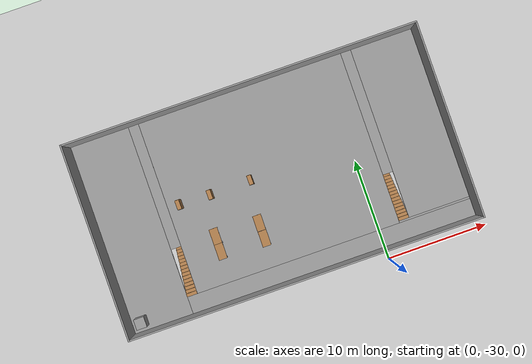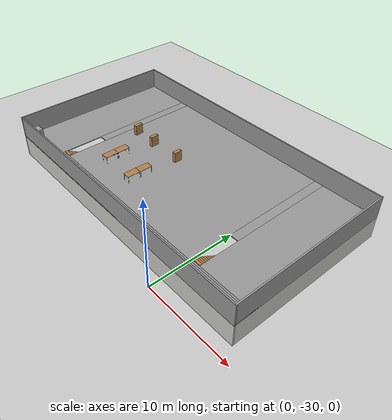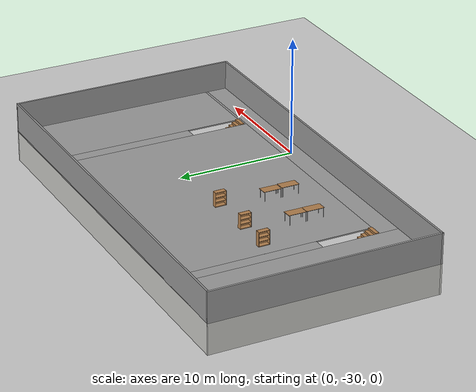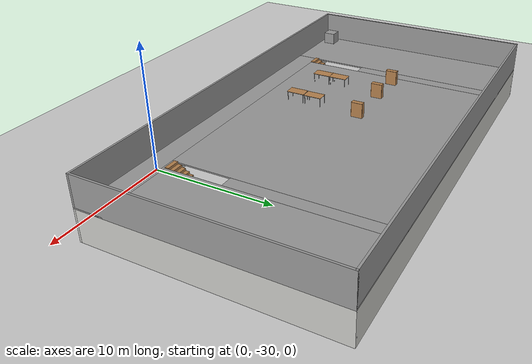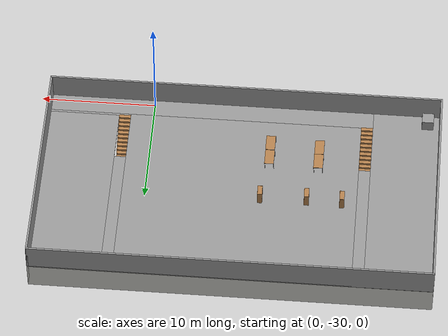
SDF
<sdf version="1.6">
 <world name="default">
  <model name="ground_plane">
   <static>1</static>
   <link name="link">
    <collision name="collision">
     <geometry><plane><normal>0 0 1</normal><size>100 100</size></plane></geometry>
     <surface><friction><ode><mu>100</mu><mu2>50</mu2></ode></friction></surface>
    </collision>
    <visual name="visual">
     <cast_shadows>0</cast_shadows>
     <geometry><plane><normal>0 0 1</normal><size>100 100</size></plane></geometry>
     <material>
      <script><uri>file://media/materials/scripts/gazebo.material</uri><name>Gazebo/Grey</name></script>
     </material>
    </visual>
   </link>
  </model>
  <model name="stairs">
   <pose>-8.11593 -19.2171 0 0 -0 0</pose>
   <link name="Floor_0">
    <pose>0 -0 2.5 0 -0 0</pose>
    <visual name="Floor_0_Visual_0">
     <pose>-14.0736 0 0.05 0 -0 0</pose>
     <geometry><box><size>5.85273 18.75 0.1</size></box></geometry>
     <material>
      <script><uri>file://media/materials/scripts/gazebo.material</uri><name>Gazebo/Grey</name></script>
      <ambient>1 1 1 1</ambient>
     </material>
     <meta><layer>1</layer></meta>
    </visual>
    <collision name="Floor_0_Collision_0">
     <geometry><box><size>5.85273 18.75 0.1</size></box></geometry>
     <pose>-14.0736 0 0.05 0 -0 0</pose>
    </collision>
    <visual name="Floor_0_Visual_1">
     <pose>2.92637 -8.47433 0.05 0 -0 0</pose>
     <geometry><box><size>28.1473 1.80135 0.1</size></box></geometry>
     <material>
      <script><uri>file://media/materials/scripts/gazebo.material</uri><name>Gazebo/Grey</name></script>
      <ambient>1 1 1 1</ambient>
     </material>
     <meta><layer>1</layer></meta>
    </visual>
    <collision name="Floor_0_Collision_1">
     <geometry><box><size>28.1473 1.80135 0.1</size></box></geometry>
     <pose>2.92637 -8.47433 0.05 0 -0 0</pose>
    </collision>
    <visual name="Floor_0_Visual_2">
     <pose>-0.133407 0.900675 0.05 0 -0 0</pose>
     <geometry><box><size>20.0277 16.9487 0.1</size></box></geometry>
     <material>
      <script><uri>file://media/materials/scripts/gazebo.material</uri><name>Gazebo/Grey</name></script>
      <ambient>1 1 1 1</ambient>
     </material>
     <meta><layer>1</layer></meta>
    </visual>
    <collision name="Floor_0_Collision_2">
     <geometry><box><size>20.0277 16.9487 0.1</size></box></geometry>
     <pose>-0.133407 0.900675 0.05 0 -0 0</pose>
    </collision>
    <visual name="Floor_0_Visual_3">
     <pose>13.4402 -7.47626 0.05 0 -0 0</pose>
     <geometry><box><size>7.11955 0.194785 0.1</size></box></geometry>
     <material>
      <script><uri>file://media/materials/scripts/gazebo.material</uri><name>Gazebo/Grey</name></script>
      <ambient>1 1 1 1</ambient>
     </material>
     <meta><layer>1</layer></meta>
    </visual>
    <collision name="Floor_0_Collision_3">
     <geometry><box><size>7.11955 0.194785 0.1</size></box></geometry>
     <pose>13.4402 -7.47626 0.05 0 -0 0</pose>
    </collision>
    <visual name="Floor_0_Visual_4">
     <pose>13.9402 0.998067 0.05 0 -0 0</pose>
     <geometry><box><size>6.11955 16.7539 0.1</size></box></geometry>
     <material>
      <script><uri>file://media/materials/scripts/gazebo.material</uri><name>Gazebo/Grey</name></script>
      <ambient>1 1 1 1</ambient>
     </material>
     <meta><layer>1</layer></meta>
    </visual>
    <collision name="Floor_0_Collision_4">
     <geometry><box><size>6.11955 16.7539 0.1</size></box></geometry>
     <pose>13.9402 0.998067 0.05 0 -0 0</pose>
    </collision>
    <visual name="Floor_0_Visual_5">
     <pose>-10.6473 3.24067 0.05 0 -0 0</pose>
     <geometry><box><size>1 12.2686 0.1</size></box></geometry>
     <material>
      <script><uri>file://media/materials/scripts/gazebo.material</uri><name>Gazebo/Grey</name></script>
      <ambient>1 1 1 1</ambient>
     </material>
     <meta><layer>1</layer></meta>
    </visual>
    <collision name="Floor_0_Collision_5">
     <geometry><box><size>1 12.2686 0.1</size></box></geometry>
     <pose>-10.6473 3.24067 0.05 0 -0 0</pose>
    </collision>
    <visual name="Floor_0_Visual_6">
     <pose>10.3805 3.27307 0.05 0 -0 0</pose>
     <geometry><box><size>1 12.2039 0.1</size></box></geometry>
     <material>
      <script><uri>file://media/materials/scripts/gazebo.material</uri><name>Gazebo/Grey</name></script>
      <ambient>1 1 1 1</ambient>
     </material>
     <meta><layer>1</layer></meta>
    </visual>
    <collision name="Floor_0_Collision_6">
     <geometry><box><size>1 12.2039 0.1</size></box></geometry>
     <pose>10.3805 3.27307 0.05 0 -0 0</pose>
    </collision>
   </link>
   <link name="Stairs_0">
    <visual name="Stairs_0_Visual_0">
     <pose>10.3805 -2.98053 0.088867 0 -0 0</pose>
     <geometry><box><size>1 0.303333 0.177733</size></box></geometry>
     <material>
      <script><uri>file://media/materials/scripts/gazebo.material</uri><name>Gazebo/Wood</name></script>
      <ambient>1 1 1 1</ambient>
     </material>
     <meta><layer>0</layer></meta>
    </visual>
    <collision name="Stairs_0_Collision_0">
     <geometry><box><size>1 0.303333 0.177733</size></box></geometry>
     <pose>10.3805 -2.98053 0.088867 0 -0 0</pose>
    </collision>
    <visual name="Stairs_0_Visual_1">
     <pose>10.3805 -3.28387 0.2666 0 -0 0</pose>
     <geometry><box><size>1 0.303333 0.177733</size></box></geometry>
     <material>
      <script><uri>file://media/materials/scripts/gazebo.material</uri><name>Gazebo/Wood</name></script>
      <ambient>1 1 1 1</ambient>
     </material>
     <meta><layer>0</layer></meta>
    </visual>
    <collision name="Stairs_0_Collision_1">
     <geometry><box><size>1 0.303333 0.177733</size></box></geometry>
     <pose>10.3805 -3.28387 0.2666 0 -0 0</pose>
    </collision>
    <visual name="Stairs_0_Visual_2">
     <pose>10.3805 -3.5872 0.444333 0 -0 0</pose>
     <geometry><box><size>1 0.303333 0.177733</size></box></geometry>
     <material>
      <script><uri>file://media/materials/scripts/gazebo.material</uri><name>Gazebo/Wood</name></script>
      <ambient>1 1 1 1</ambient>
     </material>
     <meta><layer>0</layer></meta>
    </visual>
    <collision name="Stairs_0_Collision_2">
     <geometry><box><size>1 0.303333 0.177733</size></box></geometry>
     <pose>10.3805 -3.5872 0.444333 0 -0 0</pose>
    </collision>
    <visual name="Stairs_0_Visual_3">
     <pose>10.3805 -3.89053 0.622067 0 -0 0</pose>
     <geometry><box><size>1 0.303333 0.177733</size></box></geometry>
     <material>
      <script><uri>file://media/materials/scripts/gazebo.material</uri><name>Gazebo/Wood</name></script>
      <ambient>1 1 1 1</ambient>
     </material>
     <meta><layer>0</layer></meta>
    </visual>
    <collision name="Stairs_0_Collision_3">
     <geometry><box><size>1 0.303333 0.177733</size></box></geometry>
     <pose>10.3805 -3.89053 0.622067 0 -0 0</pose>
    </collision>
    <visual name="Stairs_0_Visual_4">
     <pose>10.3805 -4.19387 0.7998 0 -0 0</pose>
     <geometry><box><size>1 0.303333 0.177733</size></box></geometry>
     <material>
      <script><uri>file://media/materials/scripts/gazebo.material</uri><name>Gazebo/Wood</name></script>
      <ambient>1 1 1 1</ambient>
     </material>
     <meta><layer>0</layer></meta>
    </visual>
    <collision name="Stairs_0_Collision_4">
     <geometry><box><size>1 0.303333 0.177733</size></box></geometry>
     <pose>10.3805 -4.19387 0.7998 0 -0 0</pose>
    </collision>
    <visual name="Stairs_0_Visual_5">
     <pose>10.3805 -4.4972 0.977533 0 -0 0</pose>
     <geometry><box><size>1 0.303333 0.177733</size></box></geometry>
     <material>
      <script><uri>file://media/materials/scripts/gazebo.material</uri><name>Gazebo/Wood</name></script>
      <ambient>1 1 1 1</ambient>
     </material>
     <meta><layer>0</layer></meta>
    </visual>
    <collision name="Stairs_0_Collision_5">
     <geometry><box><size>1 0.303333 0.177733</size></box></geometry>
     <pose>10.3805 -4.4972 0.977533 0 -0 0</pose>
    </collision>
    <visual name="Stairs_0_Visual_6">
     <pose>10.3805 -4.80053 1.15527 0 -0 0</pose>
     <geometry><box><size>1 0.303333 0.177733</size></box></geometry>
     <material>
      <script><uri>file://media/materials/scripts/gazebo.material</uri><name>Gazebo/Wood</name></script>
      <ambient>1 1 1 1</ambient>
     </material>
     <meta><layer>0</layer></meta>
    </visual>
    <collision name="Stairs_0_Collision_6">
     <geometry><box><size>1 0.303333 0.177733</size></box></geometry>
     <pose>10.3805 -4.80053 1.15527 0 -0 0</pose>
    </collision>
    <visual name="Stairs_0_Visual_7">
     <pose>10.3805 -5.10387 1.333 0 -0 0</pose>
     <geometry><box><size>1 0.303333 0.177733</size></box></geometry>
     <material>
      <script><uri>file://media/materials/scripts/gazebo.material</uri><name>Gazebo/Wood</name></script>
      <ambient>1 1 1 1</ambient>
     </material>
     <meta><layer>0</layer></meta>
    </visual>
    <collision name="Stairs_0_Collision_7">
     <geometry><box><size>1 0.303333 0.177733</size></box></geometry>
     <pose>10.3805 -5.10387 1.333 0 -0 0</pose>
    </collision>
    <visual name="Stairs_0_Visual_8">
     <pose>10.3805 -5.4072 1.51073 0 -0 0</pose>
     <geometry><box><size>1 0.303333 0.177733</size></box></geometry>
     <material>
      <script><uri>file://media/materials/scripts/gazebo.material</uri><name>Gazebo/Wood</name></script>
      <ambient>1 1 1 1</ambient>
     </material>
     <meta><layer>0</layer></meta>
    </visual>
    <collision name="Stairs_0_Collision_8">
     <geometry><box><size>1 0.303333 0.177733</size></box></geometry>
     <pose>10.3805 -5.4072 1.51073 0 -0 0</pose>
    </collision>
    <visual name="Stairs_0_Visual_9">
     <pose>10.3805 -5.71053 1.68847 0 -0 0</pose>
     <geometry><box><size>1 0.303333 0.177733</size></box></geometry>
     <material>
      <script><uri>file://media/materials/scripts/gazebo.material</uri><name>Gazebo/Wood</name></script>
      <ambient>1 1 1 1</ambient>
     </material>
     <meta><layer>0</layer></meta>
    </visual>
    <collision name="Stairs_0_Collision_9">
     <geometry><box><size>1 0.303333 0.177733</size></box></geometry>
     <pose>10.3805 -5.71053 1.68847 0 -0 0</pose>
    </collision>
    <visual name="Stairs_0_Visual_10">
     <pose>10.3805 -6.01387 1.8662 0 -0 0</pose>
     <geometry><box><size>1 0.303333 0.177733</size></box></geometry>
     <material>
      <script><uri>file://media/materials/scripts/gazebo.material</uri><name>Gazebo/Wood</name></script>
      <ambient>1 1 1 1</ambient>
     </material>
     <meta><layer>0</layer></meta>
    </visual>
    <collision name="Stairs_0_Collision_10">
     <geometry><box><size>1 0.303333 0.177733</size></box></geometry>
     <pose>10.3805 -6.01387 1.8662 0 -0 0</pose>
    </collision>
    <visual name="Stairs_0_Visual_11">
     <pose>10.3805 -6.3172 2.04393 0 -0 0</pose>
     <geometry><box><size>1 0.303333 0.177733</size></box></geometry>
     <material>
      <script><uri>file://media/materials/scripts/gazebo.material</uri><name>Gazebo/Wood</name></script>
      <ambient>1 1 1 1</ambient>
     </material>
     <meta><layer>0</layer></meta>
    </visual>
    <collision name="Stairs_0_Collision_11">
     <geometry><box><size>1 0.303333 0.177733</size></box></geometry>
     <pose>10.3805 -6.3172 2.04393 0 -0 0</pose>
    </collision>
    <visual name="Stairs_0_Visual_12">
     <pose>10.3805 -6.62053 2.22167 0 -0 0</pose>
     <geometry><box><size>1 0.303333 0.177733</size></box></geometry>
     <material>
      <script><uri>file://media/materials/scripts/gazebo.material</uri><name>Gazebo/Wood</name></script>
      <ambient>1 1 1 1</ambient>
     </material>
     <meta><layer>0</layer></meta>
    </visual>
    <collision name="Stairs_0_Collision_12">
     <geometry><box><size>1 0.303333 0.177733</size></box></geometry>
     <pose>10.3805 -6.62053 2.22167 0 -0 0</pose>
    </collision>
    <visual name="Stairs_0_Visual_13">
     <pose>10.3805 -6.92387 2.3994 0 -0 0</pose>
     <geometry><box><size>1 0.303333 0.177733</size></box></geometry>
     <material>
      <script><uri>file://media/materials/scripts/gazebo.material</uri><name>Gazebo/Wood</name></script>
      <ambient>1 1 1 1</ambient>
     </material>
     <meta><layer>0</layer></meta>
    </visual>
    <collision name="Stairs_0_Collision_13">
     <geometry><box><size>1 0.303333 0.177733</size></box></geometry>
     <pose>10.3805 -6.92387 2.3994 0 -0 0</pose>
    </collision>
    <visual name="Stairs_0_Visual_14">
     <pose>10.3805 -7.2272 2.57713 0 -0 0</pose>
     <geometry><box><size>1 0.303333 0.177733</size></box></geometry>
     <material>
      <script><uri>file://media/materials/scripts/gazebo.material</uri><name>Gazebo/Wood</name></script>
      <ambient>1 1 1 1</ambient>
     </material>
     <meta><layer>0</layer></meta>
    </visual>
    <collision name="Stairs_0_Collision_14">
     <geometry><box><size>1 0.303333 0.177733</size></box></geometry>
     <pose>10.3805 -7.2272 2.57713 0 -0 0</pose>
    </collision>
   </link>
   <link name="Stairs_1">
    <visual name="Stairs_1_Visual_0">
     <pose>-10.6473 -3.04965 0.088867 0 -0 0</pose>
     <geometry><box><size>1 0.312 0.177733</size></box></geometry>
     <material>
      <script><uri>file://media/materials/scripts/gazebo.material</uri><name>Gazebo/Wood</name></script>
      <ambient>1 1 1 1</ambient>
     </material>
     <meta><layer>0</layer></meta>
    </visual>
    <collision name="Stairs_1_Collision_0">
     <geometry><box><size>1 0.312 0.177733</size></box></geometry>
     <pose>-10.6473 -3.04965 0.088867 0 -0 0</pose>
    </collision>
    <visual name="Stairs_1_Visual_1">
     <pose>-10.6473 -3.36165 0.2666 0 -0 0</pose>
     <geometry><box><size>1 0.312 0.177733</size></box></geometry>
     <material>
      <script><uri>file://media/materials/scripts/gazebo.material</uri><name>Gazebo/Wood</name></script>
      <ambient>1 1 1 1</ambient>
     </material>
     <meta><layer>0</layer></meta>
    </visual>
    <collision name="Stairs_1_Collision_1">
     <geometry><box><size>1 0.312 0.177733</size></box></geometry>
     <pose>-10.6473 -3.36165 0.2666 0 -0 0</pose>
    </collision>
    <visual name="Stairs_1_Visual_2">
     <pose>-10.6473 -3.67365 0.444333 0 -0 0</pose>
     <geometry><box><size>1 0.312 0.177733</size></box></geometry>
     <material>
      <script><uri>file://media/materials/scripts/gazebo.material</uri><name>Gazebo/Wood</name></script>
      <ambient>1 1 1 1</ambient>
     </material>
     <meta><layer>0</layer></meta>
    </visual>
    <collision name="Stairs_1_Collision_2">
     <geometry><box><size>1 0.312 0.177733</size></box></geometry>
     <pose>-10.6473 -3.67365 0.444333 0 -0 0</pose>
    </collision>
    <visual name="Stairs_1_Visual_3">
     <pose>-10.6473 -3.98565 0.622067 0 -0 0</pose>
     <geometry><box><size>1 0.312 0.177733</size></box></geometry>
     <material>
      <script><uri>file://media/materials/scripts/gazebo.material</uri><name>Gazebo/Wood</name></script>
      <ambient>1 1 1 1</ambient>
     </material>
     <meta><layer>0</layer></meta>
    </visual>
    <collision name="Stairs_1_Collision_3">
     <geometry><box><size>1 0.312 0.177733</size></box></geometry>
     <pose>-10.6473 -3.98565 0.622067 0 -0 0</pose>
    </collision>
    <visual name="Stairs_1_Visual_4">
     <pose>-10.6473 -4.29765 0.7998 0 -0 0</pose>
     <geometry><box><size>1 0.312 0.177733</size></box></geometry>
     <material>
      <script><uri>file://media/materials/scripts/gazebo.material</uri><name>Gazebo/Wood</name></script>
      <ambient>1 1 1 1</ambient>
     </material>
     <meta><layer>0</layer></meta>
    </visual>
    <collision name="Stairs_1_Collision_4">
     <geometry><box><size>1 0.312 0.177733</size></box></geometry>
     <pose>-10.6473 -4.29765 0.7998 0 -0 0</pose>
    </collision>
    <visual name="Stairs_1_Visual_5">
     <pose>-10.6473 -4.60965 0.977533 0 -0 0</pose>
     <geometry><box><size>1 0.312 0.177733</size></box></geometry>
     <material>
      <script><uri>file://media/materials/scripts/gazebo.material</uri><name>Gazebo/Wood</name></script>
      <ambient>1 1 1 1</ambient>
     </material>
     <meta><layer>0</layer></meta>
    </visual>
    <collision name="Stairs_1_Collision_5">
     <geometry><box><size>1 0.312 0.177733</size></box></geometry>
     <pose>-10.6473 -4.60965 0.977533 0 -0 0</pose>
    </collision>
    <visual name="Stairs_1_Visual_6">
     <pose>-10.6473 -4.92165 1.15527 0 -0 0</pose>
     <geometry><box><size>1 0.312 0.177733</size></box></geometry>
     <material>
      <script><uri>file://media/materials/scripts/gazebo.material</uri><name>Gazebo/Wood</name></script>
      <ambient>1 1 1 1</ambient>
     </material>
     <meta><layer>0</layer></meta>
    </visual>
    <collision name="Stairs_1_Collision_6">
     <geometry><box><size>1 0.312 0.177733</size></box></geometry>
     <pose>-10.6473 -4.92165 1.15527 0 -0 0</pose>
    </collision>
    <visual name="Stairs_1_Visual_7">
     <pose>-10.6473 -5.23365 1.333 0 -0 0</pose>
     <geometry><box><size>1 0.312 0.177733</size></box></geometry>
     <material>
      <script><uri>file://media/materials/scripts/gazebo.material</uri><name>Gazebo/Wood</name></script>
      <ambient>1 1 1 1</ambient>
     </material>
     <meta><layer>0</layer></meta>
    </visual>
    <collision name="Stairs_1_Collision_7">
     <geometry><box><size>1 0.312 0.177733</size></box></geometry>
     <pose>-10.6473 -5.23365 1.333 0 -0 0</pose>
    </collision>
    <visual name="Stairs_1_Visual_8">
     <pose>-10.6473 -5.54565 1.51073 0 -0 0</pose>
     <geometry><box><size>1 0.312 0.177733</size></box></geometry>
     <material>
      <script><uri>file://media/materials/scripts/gazebo.material</uri><name>Gazebo/Wood</name></script>
      <ambient>1 1 1 1</ambient>
     </material>
     <meta><layer>0</layer></meta>
    </visual>
    <collision name="Stairs_1_Collision_8">
     <geometry><box><size>1 0.312 0.177733</size></box></geometry>
     <pose>-10.6473 -5.54565 1.51073 0 -0 0</pose>
    </collision>
    <visual name="Stairs_1_Visual_9">
     <pose>-10.6473 -5.85765 1.68847 0 -0 0</pose>
     <geometry><box><size>1 0.312 0.177733</size></box></geometry>
     <material>
      <script><uri>file://media/materials/scripts/gazebo.material</uri><name>Gazebo/Wood</name></script>
      <ambient>1 1 1 1</ambient>
     </material>
     <meta><layer>0</layer></meta>
    </visual>
    <collision name="Stairs_1_Collision_9">
     <geometry><box><size>1 0.312 0.177733</size></box></geometry>
     <pose>-10.6473 -5.85765 1.68847 0 -0 0</pose>
    </collision>
    <visual name="Stairs_1_Visual_10">
     <pose>-10.6473 -6.16965 1.8662 0 -0 0</pose>
     <geometry><box><size>1 0.312 0.177733</size></box></geometry>
     <material>
      <script><uri>file://media/materials/scripts/gazebo.material</uri><name>Gazebo/Wood</name></script>
      <ambient>1 1 1 1</ambient>
     </material>
     <meta><layer>0</layer></meta>
    </visual>
    <collision name="Stairs_1_Collision_10">
     <geometry><box><size>1 0.312 0.177733</size></box></geometry>
     <pose>-10.6473 -6.16965 1.8662 0 -0 0</pose>
    </collision>
    <visual name="Stairs_1_Visual_11">
     <pose>-10.6473 -6.48165 2.04393 0 -0 0</pose>
     <geometry><box><size>1 0.312 0.177733</size></box></geometry>
     <material>
      <script><uri>file://media/materials/scripts/gazebo.material</uri><name>Gazebo/Wood</name></script>
      <ambient>1 1 1 1</ambient>
     </material>
     <meta><layer>0</layer></meta>
    </visual>
    <collision name="Stairs_1_Collision_11">
     <geometry><box><size>1 0.312 0.177733</size></box></geometry>
     <pose>-10.6473 -6.48165 2.04393 0 -0 0</pose>
    </collision>
    <visual name="Stairs_1_Visual_12">
     <pose>-10.6473 -6.79365 2.22167 0 -0 0</pose>
     <geometry><box><size>1 0.312 0.177733</size></box></geometry>
     <material>
      <script><uri>file://media/materials/scripts/gazebo.material</uri><name>Gazebo/Wood</name></script>
      <ambient>1 1 1 1</ambient>
     </material>
     <meta><layer>0</layer></meta>
    </visual>
    <collision name="Stairs_1_Collision_12">
     <geometry><box><size>1 0.312 0.177733</size></box></geometry>
     <pose>-10.6473 -6.79365 2.22167 0 -0 0</pose>
    </collision>
    <visual name="Stairs_1_Visual_13">
     <pose>-10.6473 -7.10565 2.3994 0 -0 0</pose>
     <geometry><box><size>1 0.312 0.177733</size></box></geometry>
     <material>
      <script><uri>file://media/materials/scripts/gazebo.material</uri><name>Gazebo/Wood</name></script>
      <ambient>1 1 1 1</ambient>
     </material>
     <meta><layer>0</layer></meta>
    </visual>
    <collision name="Stairs_1_Collision_13">
     <geometry><box><size>1 0.312 0.177733</size></box></geometry>
     <pose>-10.6473 -7.10565 2.3994 0 -0 0</pose>
    </collision>
    <visual name="Stairs_1_Visual_14">
     <pose>-10.6473 -7.41765 2.57713 0 -0 0</pose>
     <geometry><box><size>1 0.312 0.177733</size></box></geometry>
     <material>
      <script><uri>file://media/materials/scripts/gazebo.material</uri><name>Gazebo/Wood</name></script>
      <ambient>1 1 1 1</ambient>
     </material>
     <meta><layer>0</layer></meta>
    </visual>
    <collision name="Stairs_1_Collision_14">
     <geometry><box><size>1 0.312 0.177733</size></box></geometry>
     <pose>-10.6473 -7.41765 2.57713 0 -0 0</pose>
    </collision>
   </link>
   <link name="Wall_11">
    <collision name="Wall_11_Collision">
     <geometry><box><size>18.75 0.15 2.5</size></box></geometry>
     <pose>0 0 1.25 0 -0 0</pose>
    </collision>
    <visual name="Wall_11_Visual">
     <pose>0 0 1.25 0 -0 0</pose>
     <geometry><box><size>18.75 0.15 2.5</size></box></geometry>
     <material>
      <script><uri>file://media/materials/scripts/gazebo.material</uri><name>Gazebo/Grey</name></script>
      <ambient>1 1 1 1</ambient>
     </material>
     <meta><layer>1</layer></meta>
    </visual>
    <pose>-16.925 -0 2.5 0 -0 1.5708</pose>
   </link>
   <link name="Wall_12">
    <collision name="Wall_12_Collision">
     <geometry><box><size>34 0.15 2.5</size></box></geometry>
     <pose>0 0 1.25 0 -0 0</pose>
    </collision>
    <visual name="Wall_12_Visual">
     <pose>0 0 1.25 0 -0 0</pose>
     <geometry><box><size>34 0.15 2.5</size></box></geometry>
     <material>
      <script><uri>file://media/materials/scripts/gazebo.material</uri><name>Gazebo/Grey</name></script>
      <ambient>1 1 1 1</ambient>
     </material>
     <meta><layer>1</layer></meta>
    </visual>
    <pose>0 9.3 2.5 0 -0 0</pose>
   </link>
   <link name="Wall_13">
    <collision name="Wall_13_Collision">
     <geometry><box><size>18.75 0.15 2.5</size></box></geometry>
     <pose>0 0 1.25 0 -0 0</pose>
    </collision>
    <visual name="Wall_13_Visual">
     <pose>0 0 1.25 0 -0 0</pose>
     <geometry><box><size>18.75 0.15 2.5</size></box></geometry>
     <material>
      <script><uri>file://media/materials/scripts/gazebo.material</uri><name>Gazebo/Grey</name></script>
      <ambient>1 1 1 1</ambient>
     </material>
     <meta><layer>1</layer></meta>
    </visual>
    <pose>16.925 -0 2.5 0 -0 -1.5708</pose>
   </link>
   <link name="Wall_14">
    <collision name="Wall_14_Collision">
     <geometry><box><size>34 0.15 2.5</size></box></geometry>
     <pose>0 0 1.25 0 -0 0</pose>
    </collision>
    <visual name="Wall_14_Visual">
     <pose>0 0 1.25 0 -0 0</pose>
     <geometry><box><size>34 0.15 2.5</size></box></geometry>
     <material>
      <script><uri>file://media/materials/scripts/gazebo.material</uri><name>Gazebo/Grey</name></script>
      <ambient>1 1 1 1</ambient>
     </material>
     <meta><layer>1</layer></meta>
    </visual>
    <pose>0 -9.3 2.5 0 -0 3.14159</pose>
   </link>
   <link name="Wall_5">
    <collision name="Wall_5_Collision">
     <geometry><box><size>18.75 0.15 2.5</size></box></geometry>
     <pose>0 0 1.25 0 -0 0</pose>
    </collision>
    <visual name="Wall_5_Visual">
     <pose>0 0 1.25 0 -0 0</pose>
     <geometry><box><size>18.75 0.15 2.5</size></box></geometry>
     <material>
      <script><uri>file://media/materials/scripts/gazebo.material</uri><name>Gazebo/CeilingTiled</name></script>
      <ambient>1 1 1 1</ambient>
     </material>
     <meta><layer>0</layer></meta>
    </visual>
    <pose>-16.925 -0 0 0 -0 1.5708</pose>
   </link>
   <link name="Wall_7">
    <collision name="Wall_7_Collision">
     <geometry><box><size>34 0.15 2.5</size></box></geometry>
     <pose>0 0 1.25 0 -0 0</pose>
    </collision>
    <visual name="Wall_7_Visual">
     <pose>0 0 1.25 0 -0 0</pose>
     <geometry><box><size>34 0.15 2.5</size></box></geometry>
     <material>
      <script><uri>file://media/materials/scripts/gazebo.material</uri><name>Gazebo/CeilingTiled</name></script>
      <ambient>1 1 1 1</ambient>
     </material>
     <meta><layer>0</layer></meta>
    </visual>
    <pose>0 9.3 0 0 -0 0</pose>
   </link>
   <link name="Wall_8">
    <collision name="Wall_8_Collision">
     <geometry><box><size>18.75 0.15 2.5</size></box></geometry>
     <pose>0 0 1.25 0 -0 0</pose>
    </collision>
    <visual name="Wall_8_Visual">
     <pose>0 0 1.25 0 -0 0</pose>
     <geometry><box><size>18.75 0.15 2.5</size></box></geometry>
     <material>
      <script><uri>file://media/materials/scripts/gazebo.material</uri><name>Gazebo/CeilingTiled</name></script>
      <ambient>1 1 1 1</ambient>
     </material>
     <meta><layer>0</layer></meta>
    </visual>
    <pose>16.925 -0 0 0 -0 -1.5708</pose>
   </link>
   <link name="Wall_9">
    <collision name="Wall_9_Collision">
     <geometry><box><size>34 0.15 2.5</size></box></geometry>
     <pose>0 0 1.25 0 -0 0</pose>
    </collision>
    <visual name="Wall_9_Visual">
     <pose>0 0 1.25 0 -0 0</pose>
     <geometry><box><size>34 0.15 2.5</size></box></geometry>
     <material>
      <script><uri>file://media/materials/scripts/gazebo.material</uri><name>Gazebo/CeilingTiled</name></script>
      <ambient>1 1 1 1</ambient>
     </material>
     <meta><layer>0</layer></meta>
    </visual>
    <pose>0 -9.3 0 0 -0 3.14159</pose>
   </link>
   <static>1</static>
  </model>
  <model name="bookshelf_clone_clone_clone_2">
   <static>1</static>
   <link name="link">
    <inertial><mass>1</mass></inertial>
    <collision name="back">
     <pose>0 0.005 0.6 0 -0 0</pose>
     <geometry><box><size>0.9 0.01 1.2</size></box></geometry>
    </collision>
    <visual name="visual1">
     <pose>0 0.005 0.6 0 -0 0</pose>
     <geometry><box><size>0.9 0.01 1.2</size></box></geometry>
     <material>
      <script><uri>file://media/materials/scripts/gazebo.material</uri><name>Gazebo/Wood</name></script>
     </material>
    </visual>
    <collision name="left_side">
     <pose>0.45 -0.195 0.6 0 -0 0</pose>
     <geometry><box><size>0.02 0.4 1.2</size></box></geometry>
    </collision>
    <visual name="visual2">
     <pose>0.45 -0.195 0.6 0 -0 0</pose>
     <geometry><box><size>0.02 0.4 1.2</size></box></geometry>
     <material>
      <script><uri>file://media/materials/scripts/gazebo.material</uri><name>Gazebo/Wood</name></script>
     </material>
    </visual>
    <collision name="right_side">
     <pose>-0.45 -0.195 0.6 0 -0 0</pose>
     <geometry><box><size>0.02 0.4 1.2</size></box></geometry>
    </collision>
    <visual name="visual3">
     <pose>-0.45 -0.195 0.6 0 -0 0</pose>
     <geometry><box><size>0.02 0.4 1.2</size></box></geometry>
     <material>
      <script><uri>file://media/materials/scripts/gazebo.material</uri><name>Gazebo/Wood</name></script>
     </material>
    </visual>
    <collision name="bottom">
     <pose>0 -0.195 0.03 0 -0 0</pose>
     <geometry><box><size>0.88 0.4 0.06</size></box></geometry>
    </collision>
    <visual name="visual4">
     <pose>0 -0.195 0.03 0 -0 0</pose>
     <geometry><box><size>0.88 0.4 0.06</size></box></geometry>
     <material>
      <script><uri>file://media/materials/scripts/gazebo.material</uri><name>Gazebo/Wood</name></script>
     </material>
    </visual>
    <collision name="top">
     <pose>0 -0.195 1.19 0 -0 0</pose>
     <geometry><box><size>0.88 0.4 0.02</size></box></geometry>
    </collision>
    <visual name="visual5">
     <pose>0 -0.195 1.19 0 -0 0</pose>
     <geometry><box><size>0.88 0.4 0.02</size></box></geometry>
     <material>
      <script><uri>file://media/materials/scripts/gazebo.material</uri><name>Gazebo/Wood</name></script>
     </material>
    </visual>
    <collision name="low_shelf">
     <pose>0 -0.195 0.43 0 -0 0</pose>
     <geometry><box><size>0.88 0.4 0.02</size></box></geometry>
    </collision>
    <visual name="visual6">
     <pose>0 -0.195 0.43 0 -0 0</pose>
     <geometry><box><size>0.88 0.4 0.02</size></box></geometry>
     <material>
      <script><uri>file://media/materials/scripts/gazebo.material</uri><name>Gazebo/Wood</name></script>
     </material>
    </visual>
    <collision name="high_shelf">
     <pose>0 -0.195 0.8 0 -0 0</pose>
     <geometry><box><size>0.88 0.4 0.02</size></box></geometry>
    </collision>
    <visual name="visual7">
     <pose>0 -0.195 0.8 0 -0 0</pose>
     <geometry><box><size>0.88 0.4 0.02</size></box></geometry>
     <material>
      <script><uri>file://media/materials/scripts/gazebo.material</uri><name>Gazebo/Wood</name></script>
     </material>
    </visual>
    <enable_wind>1</enable_wind>
   </link>
   <pose>-13.8132 -18.4559 2.61718 0 0 -1.55468</pose>
   <enable_wind>1</enable_wind>
  </model>
  <model name="bookshelf_clone_clone_clone_9">
   <static>1</static>
   <link name="link">
    <inertial><mass>1</mass></inertial>
    <collision name="back">
     <pose>0 0.005 0.6 0 -0 0</pose>
     <geometry><box><size>0.9 0.01 1.2</size></box></geometry>
    </collision>
    <visual name="visual1">
     <pose>0 0.005 0.6 0 -0 0</pose>
     <geometry><box><size>0.9 0.01 1.2</size></box></geometry>
     <material>
      <script><uri>file://media/materials/scripts/gazebo.material</uri><name>Gazebo/Wood</name></script>
     </material>
    </visual>
    <collision name="left_side">
     <pose>0.45 -0.195 0.6 0 -0 0</pose>
     <geometry><box><size>0.02 0.4 1.2</size></box></geometry>
    </collision>
    <visual name="visual2">
     <pose>0.45 -0.195 0.6 0 -0 0</pose>
     <geometry><box><size>0.02 0.4 1.2</size></box></geometry>
     <material>
      <script><uri>file://media/materials/scripts/gazebo.material</uri><name>Gazebo/Wood</name></script>
     </material>
    </visual>
    <collision name="right_side">
     <pose>-0.45 -0.195 0.6 0 -0 0</pose>
     <geometry><box><size>0.02 0.4 1.2</size></box></geometry>
    </collision>
    <visual name="visual3">
     <pose>-0.45 -0.195 0.6 0 -0 0</pose>
     <geometry><box><size>0.02 0.4 1.2</size></box></geometry>
     <material>
      <script><uri>file://media/materials/scripts/gazebo.material</uri><name>Gazebo/Wood</name></script>
     </material>
    </visual>
    <collision name="bottom">
     <pose>0 -0.195 0.03 0 -0 0</pose>
     <geometry><box><size>0.88 0.4 0.06</size></box></geometry>
    </collision>
    <visual name="visual4">
     <pose>0 -0.195 0.03 0 -0 0</pose>
     <geometry><box><size>0.88 0.4 0.06</size></box></geometry>
     <material>
      <script><uri>file://media/materials/scripts/gazebo.material</uri><name>Gazebo/Wood</name></script>
     </material>
    </visual>
    <collision name="top">
     <pose>0 -0.195 1.19 0 -0 0</pose>
     <geometry><box><size>0.88 0.4 0.02</size></box></geometry>
    </collision>
    <visual name="visual5">
     <pose>0 -0.195 1.19 0 -0 0</pose>
     <geometry><box><size>0.88 0.4 0.02</size></box></geometry>
     <material>
      <script><uri>file://media/materials/scripts/gazebo.material</uri><name>Gazebo/Wood</name></script>
     </material>
    </visual>
    <collision name="low_shelf">
     <pose>0 -0.195 0.43 0 -0 0</pose>
     <geometry><box><size>0.88 0.4 0.02</size></box></geometry>
    </collision>
    <visual name="visual6">
     <pose>0 -0.195 0.43 0 -0 0</pose>
     <geometry><box><size>0.88 0.4 0.02</size></box></geometry>
     <material>
      <script><uri>file://media/materials/scripts/gazebo.material</uri><name>Gazebo/Wood</name></script>
     </material>
    </visual>
    <collision name="high_shelf">
     <pose>0 -0.195 0.8 0 -0 0</pose>
     <geometry><box><size>0.88 0.4 0.02</size></box></geometry>
    </collision>
    <visual name="visual7">
     <pose>0 -0.195 0.8 0 -0 0</pose>
     <geometry><box><size>0.88 0.4 0.02</size></box></geometry>
     <material>
      <script><uri>file://media/materials/scripts/gazebo.material</uri><name>Gazebo/Wood</name></script>
     </material>
    </visual>
    <enable_wind>1</enable_wind>
   </link>
   <pose>-9.85148 -18.4052 2.61718 0 0 -1.55468</pose>
   <enable_wind>1</enable_wind>
  </model>
  <model name="table_clone_clone_clone_0">
   <static>1</static>
   <link name="link">
    <collision name="surface">
     <pose>0 0 1 0 -0 0</pose>
     <geometry><box><size>1.5 0.8 0.03</size></box></geometry>
     <surface><friction><ode><mu>0.6</mu><mu2>0.6</mu2></ode></friction></surface>
    </collision>
    <visual name="visual1">
     <pose>0 0 1 0 -0 0</pose>
     <geometry><box><size>1.5 0.8 0.03</size></box></geometry>
     <material>
      <script><uri>file://media/materials/scripts/gazebo.material</uri><name>Gazebo/Wood</name></script>
     </material>
    </visual>
    <collision name="front_left_leg">
     <pose>0.68 0.38 0.5 0 -0 0</pose>
     <geometry><cylinder><radius>0.02</radius><length>1</length></cylinder></geometry>
    </collision>
    <visual name="front_left_leg">
     <pose>0.68 0.38 0.5 0 -0 0</pose>
     <geometry><cylinder><radius>0.02</radius><length>1</length></cylinder></geometry>
     <material>
      <script><uri>file://media/materials/scripts/gazebo.material</uri><name>Gazebo/Grey</name></script>
     </material>
    </visual>
    <collision name="front_right_leg">
     <pose>0.68 -0.38 0.5 0 -0 0</pose>
     <geometry><cylinder><radius>0.02</radius><length>1</length></cylinder></geometry>
    </collision>
    <visual name="front_right_leg">
     <pose>0.68 -0.38 0.5 0 -0 0</pose>
     <geometry><cylinder><radius>0.02</radius><length>1</length></cylinder></geometry>
     <material>
      <script><uri>file://media/materials/scripts/gazebo.material</uri><name>Gazebo/Grey</name></script>
     </material>
    </visual>
    <collision name="back_right_leg">
     <pose>-0.68 -0.38 0.5 0 -0 0</pose>
     <geometry><cylinder><radius>0.02</radius><length>1</length></cylinder></geometry>
    </collision>
    <visual name="back_right_leg">
     <pose>-0.68 -0.38 0.5 0 -0 0</pose>
     <geometry><cylinder><radius>0.02</radius><length>1</length></cylinder></geometry>
     <material>
      <script><uri>file://media/materials/scripts/gazebo.material</uri><name>Gazebo/Grey</name></script>
     </material>
    </visual>
    <collision name="back_left_leg">
     <pose>-0.68 0.38 0.5 0 -0 0</pose>
     <geometry><cylinder><radius>0.02</radius><length>1</length></cylinder></geometry>
    </collision>
    <visual name="back_left_leg">
     <pose>-0.68 0.38 0.5 0 -0 0</pose>
     <geometry><cylinder><radius>0.02</radius><length>1</length></cylinder></geometry>
     <material>
      <script><uri>file://media/materials/scripts/gazebo.material</uri><name>Gazebo/Grey</name></script>
     </material>
    </visual>
   </link>
   <pose>-10.6346 -22.4118 2.34343 0.042372 -0.007072 1.56735</pose>
  </model>
  <model name="table_clone_clone_clone_2">
   <static>1</static>
   <link name="link">
    <collision name="surface">
     <pose>0 0 1 0 -0 0</pose>
     <geometry><box><size>1.5 0.8 0.03</size></box></geometry>
     <surface><friction><ode><mu>0.6</mu><mu2>0.6</mu2></ode></friction></surface>
    </collision>
    <visual name="visual1">
     <pose>0 0 1 0 -0 0</pose>
     <geometry><box><size>1.5 0.8 0.03</size></box></geometry>
     <material>
      <script><uri>file://media/materials/scripts/gazebo.material</uri><name>Gazebo/Wood</name></script>
     </material>
    </visual>
    <collision name="front_left_leg">
     <pose>0.68 0.38 0.5 0 -0 0</pose>
     <geometry><cylinder><radius>0.02</radius><length>1</length></cylinder></geometry>
    </collision>
    <visual name="front_left_leg">
     <pose>0.68 0.38 0.5 0 -0 0</pose>
     <geometry><cylinder><radius>0.02</radius><length>1</length></cylinder></geometry>
     <material>
      <script><uri>file://media/materials/scripts/gazebo.material</uri><name>Gazebo/Grey</name></script>
     </material>
    </visual>
    <collision name="front_right_leg">
     <pose>0.68 -0.38 0.5 0 -0 0</pose>
     <geometry><cylinder><radius>0.02</radius><length>1</length></cylinder></geometry>
    </collision>
    <visual name="front_right_leg">
     <pose>0.68 -0.38 0.5 0 -0 0</pose>
     <geometry><cylinder><radius>0.02</radius><length>1</length></cylinder></geometry>
     <material>
      <script><uri>file://media/materials/scripts/gazebo.material</uri><name>Gazebo/Grey</name></script>
     </material>
    </visual>
    <collision name="back_right_leg">
     <pose>-0.68 -0.38 0.5 0 -0 0</pose>
     <geometry><cylinder><radius>0.02</radius><length>1</length></cylinder></geometry>
    </collision>
    <visual name="back_right_leg">
     <pose>-0.68 -0.38 0.5 0 -0 0</pose>
     <geometry><cylinder><radius>0.02</radius><length>1</length></cylinder></geometry>
     <material>
      <script><uri>file://media/materials/scripts/gazebo.material</uri><name>Gazebo/Grey</name></script>
     </material>
    </visual>
    <collision name="back_left_leg">
     <pose>-0.68 0.38 0.5 0 -0 0</pose>
     <geometry><cylinder><radius>0.02</radius><length>1</length></cylinder></geometry>
    </collision>
    <visual name="back_left_leg">
     <pose>-0.68 0.38 0.5 0 -0 0</pose>
     <geometry><cylinder><radius>0.02</radius><length>1</length></cylinder></geometry>
     <material>
      <script><uri>file://media/materials/scripts/gazebo.material</uri><name>Gazebo/Grey</name></script>
     </material>
    </visual>
   </link>
   <pose>-14.8421 -22.2477 2.36864 0.042372 -0.007072 1.56735</pose>
  </model>
  <model name="table_clone_clone_clone_2_clone">
   <static>1</static>
   <link name="link">
    <collision name="surface">
     <pose>0 0 1 0 -0 0</pose>
     <geometry><box><size>1.5 0.8 0.03</size></box></geometry>
     <surface><friction><ode><mu>0.6</mu><mu2>0.6</mu2></ode></friction></surface>
    </collision>
    <visual name="visual1">
     <pose>0 0 1 0 -0 0</pose>
     <geometry><box><size>1.5 0.8 0.03</size></box></geometry>
     <material>
      <script><uri>file://media/materials/scripts/gazebo.material</uri><name>Gazebo/Wood</name></script>
     </material>
    </visual>
    <collision name="front_left_leg">
     <pose>0.68 0.38 0.5 0 -0 0</pose>
     <geometry><cylinder><radius>0.02</radius><length>1</length></cylinder></geometry>
    </collision>
    <visual name="front_left_leg">
     <pose>0.68 0.38 0.5 0 -0 0</pose>
     <geometry><cylinder><radius>0.02</radius><length>1</length></cylinder></geometry>
     <material>
      <script><uri>file://media/materials/scripts/gazebo.material</uri><name>Gazebo/Grey</name></script>
     </material>
    </visual>
    <collision name="front_right_leg">
     <pose>0.68 -0.38 0.5 0 -0 0</pose>
     <geometry><cylinder><radius>0.02</radius><length>1</length></cylinder></geometry>
    </collision>
    <visual name="front_right_leg">
     <pose>0.68 -0.38 0.5 0 -0 0</pose>
     <geometry><cylinder><radius>0.02</radius><length>1</length></cylinder></geometry>
     <material>
      <script><uri>file://media/materials/scripts/gazebo.material</uri><name>Gazebo/Grey</name></script>
     </material>
    </visual>
    <collision name="back_right_leg">
     <pose>-0.68 -0.38 0.5 0 -0 0</pose>
     <geometry><cylinder><radius>0.02</radius><length>1</length></cylinder></geometry>
    </collision>
    <visual name="back_right_leg">
     <pose>-0.68 -0.38 0.5 0 -0 0</pose>
     <geometry><cylinder><radius>0.02</radius><length>1</length></cylinder></geometry>
     <material>
      <script><uri>file://media/materials/scripts/gazebo.material</uri><name>Gazebo/Grey</name></script>
     </material>
    </visual>
    <collision name="back_left_leg">
     <pose>-0.68 0.38 0.5 0 -0 0</pose>
     <geometry><cylinder><radius>0.02</radius><length>1</length></cylinder></geometry>
    </collision>
    <visual name="back_left_leg">
     <pose>-0.68 0.38 0.5 0 -0 0</pose>
     <geometry><cylinder><radius>0.02</radius><length>1</length></cylinder></geometry>
     <material>
      <script><uri>file://media/materials/scripts/gazebo.material</uri><name>Gazebo/Grey</name></script>
     </material>
    </visual>
   </link>
   <pose>-14.845 -23.7385 2.36864 0.042372 -0.007072 1.56735</pose>
  </model>
  <model name="table_clone_clone_clone_2_clone_0">
   <static>1</static>
   <link name="link">
    <collision name="surface">
     <pose>0 0 1 0 -0 0</pose>
     <geometry><box><size>1.5 0.8 0.03</size></box></geometry>
     <surface><friction><ode><mu>0.6</mu><mu2>0.6</mu2></ode></friction></surface>
    </collision>
    <visual name="visual1">
     <pose>0 0 1 0 -0 0</pose>
     <geometry><box><size>1.5 0.8 0.03</size></box></geometry>
     <material>
      <script><uri>file://media/materials/scripts/gazebo.material</uri><name>Gazebo/Wood</name></script>
     </material>
    </visual>
    <collision name="front_left_leg">
     <pose>0.68 0.38 0.5 0 -0 0</pose>
     <geometry><cylinder><radius>0.02</radius><length>1</length></cylinder></geometry>
    </collision>
    <visual name="front_left_leg">
     <pose>0.68 0.38 0.5 0 -0 0</pose>
     <geometry><cylinder><radius>0.02</radius><length>1</length></cylinder></geometry>
     <material>
      <script><uri>file://media/materials/scripts/gazebo.material</uri><name>Gazebo/Grey</name></script>
     </material>
    </visual>
    <collision name="front_right_leg">
     <pose>0.68 -0.38 0.5 0 -0 0</pose>
     <geometry><cylinder><radius>0.02</radius><length>1</length></cylinder></geometry>
    </collision>
    <visual name="front_right_leg">
     <pose>0.68 -0.38 0.5 0 -0 0</pose>
     <geometry><cylinder><radius>0.02</radius><length>1</length></cylinder></geometry>
     <material>
      <script><uri>file://media/materials/scripts/gazebo.material</uri><name>Gazebo/Grey</name></script>
     </material>
    </visual>
    <collision name="back_right_leg">
     <pose>-0.68 -0.38 0.5 0 -0 0</pose>
     <geometry><cylinder><radius>0.02</radius><length>1</length></cylinder></geometry>
    </collision>
    <visual name="back_right_leg">
     <pose>-0.68 -0.38 0.5 0 -0 0</pose>
     <geometry><cylinder><radius>0.02</radius><length>1</length></cylinder></geometry>
     <material>
      <script><uri>file://media/materials/scripts/gazebo.material</uri><name>Gazebo/Grey</name></script>
     </material>
    </visual>
    <collision name="back_left_leg">
     <pose>-0.68 0.38 0.5 0 -0 0</pose>
     <geometry><cylinder><radius>0.02</radius><length>1</length></cylinder></geometry>
    </collision>
    <visual name="back_left_leg">
     <pose>-0.68 0.38 0.5 0 -0 0</pose>
     <geometry><cylinder><radius>0.02</radius><length>1</length></cylinder></geometry>
     <material>
      <script><uri>file://media/materials/scripts/gazebo.material</uri><name>Gazebo/Grey</name></script>
     </material>
    </visual>
   </link>
   <pose>-10.6272 -23.9282 2.36864 0.042372 -0.007072 1.56735</pose>
  </model>
  <model name="bookshelf_clone_6">
   <static>1</static>
   <link name="link">
    <inertial><mass>1</mass></inertial>
    <collision name="back">
     <pose>0 0.005 0.6 0 -0 0</pose>
     <geometry><box><size>0.9 0.01 1.2</size></box></geometry>
    </collision>
    <visual name="visual1">
     <pose>0 0.005 0.6 0 -0 0</pose>
     <geometry><box><size>0.9 0.01 1.2</size></box></geometry>
     <material>
      <script><uri>file://media/materials/scripts/gazebo.material</uri><name>Gazebo/Wood</name></script>
     </material>
    </visual>
    <collision name="left_side">
     <pose>0.45 -0.195 0.6 0 -0 0</pose>
     <geometry><box><size>0.02 0.4 1.2</size></box></geometry>
    </collision>
    <visual name="visual2">
     <pose>0.45 -0.195 0.6 0 -0 0</pose>
     <geometry><box><size>0.02 0.4 1.2</size></box></geometry>
     <material>
      <script><uri>file://media/materials/scripts/gazebo.material</uri><name>Gazebo/Wood</name></script>
     </material>
    </visual>
    <collision name="right_side">
     <pose>-0.45 -0.195 0.6 0 -0 0</pose>
     <geometry><box><size>0.02 0.4 1.2</size></box></geometry>
    </collision>
    <visual name="visual3">
     <pose>-0.45 -0.195 0.6 0 -0 0</pose>
     <geometry><box><size>0.02 0.4 1.2</size></box></geometry>
     <material>
      <script><uri>file://media/materials/scripts/gazebo.material</uri><name>Gazebo/Wood</name></script>
     </material>
    </visual>
    <collision name="bottom">
     <pose>0 -0.195 0.03 0 -0 0</pose>
     <geometry><box><size>0.88 0.4 0.06</size></box></geometry>
    </collision>
    <visual name="visual4">
     <pose>0 -0.195 0.03 0 -0 0</pose>
     <geometry><box><size>0.88 0.4 0.06</size></box></geometry>
     <material>
      <script><uri>file://media/materials/scripts/gazebo.material</uri><name>Gazebo/Wood</name></script>
     </material>
    </visual>
    <collision name="top">
     <pose>0 -0.195 1.19 0 -0 0</pose>
     <geometry><box><size>0.88 0.4 0.02</size></box></geometry>
    </collision>
    <visual name="visual5">
     <pose>0 -0.195 1.19 0 -0 0</pose>
     <geometry><box><size>0.88 0.4 0.02</size></box></geometry>
     <material>
      <script><uri>file://media/materials/scripts/gazebo.material</uri><name>Gazebo/Wood</name></script>
     </material>
    </visual>
    <collision name="low_shelf">
     <pose>0 -0.195 0.43 0 -0 0</pose>
     <geometry><box><size>0.88 0.4 0.02</size></box></geometry>
    </collision>
    <visual name="visual6">
     <pose>0 -0.195 0.43 0 -0 0</pose>
     <geometry><box><size>0.88 0.4 0.02</size></box></geometry>
     <material>
      <script><uri>file://media/materials/scripts/gazebo.material</uri><name>Gazebo/Wood</name></script>
     </material>
    </visual>
    <collision name="high_shelf">
     <pose>0 -0.195 0.8 0 -0 0</pose>
     <geometry><box><size>0.88 0.4 0.02</size></box></geometry>
    </collision>
    <visual name="visual7">
     <pose>0 -0.195 0.8 0 -0 0</pose>
     <geometry><box><size>0.88 0.4 0.02</size></box></geometry>
     <material>
      <script><uri>file://media/materials/scripts/gazebo.material</uri><name>Gazebo/Wood</name></script>
     </material>
    </visual>
    <enable_wind>1</enable_wind>
   </link>
   <pose>-16.8253 -18.3881 2.61718 0 0 -1.55468</pose>
   <enable_wind>1</enable_wind>
  </model>
  <model name="unit_box_4_clone_0">
   <pose>-23.9643 -27.5368 3.1 -4e-06 -0 2e-06</pose>
   <link name="link">
    <inertial>
     <mass>1</mass>
     <inertia>
      <ixx>0.166667</ixx>
      <ixy>0</ixy>
      <ixz>0</ixz>
      <iyy>0.166667</iyy>
      <iyz>0</iyz>
      <izz>0.166667</izz>
     </inertia>
    </inertial>
    <collision name="collision"><geometry><box><size>1 1 1</size></box></geometry></collision>
    <visual name="visual">
     <geometry><box><size>1 1 1</size></box></geometry>
     <material>
      <script><name>Gazebo/Grey</name><uri>file://media/materials/scripts/gazebo.material</uri></script>
     </material>
    </visual>
   </link>
  </model>
 </world>
</sdf>
